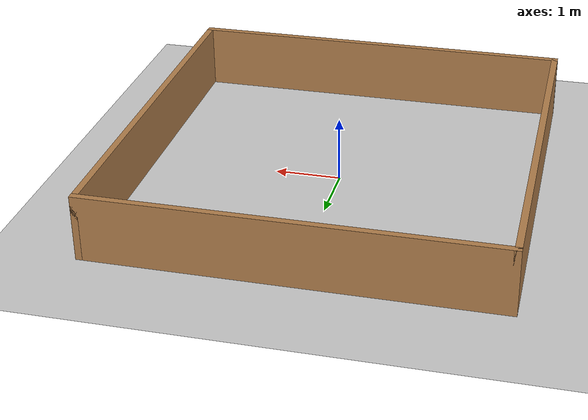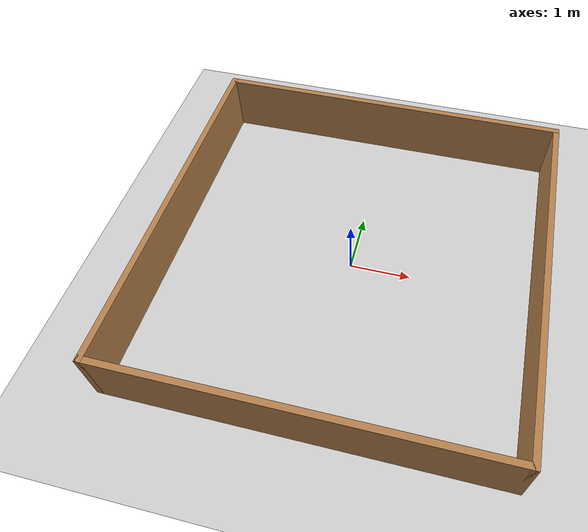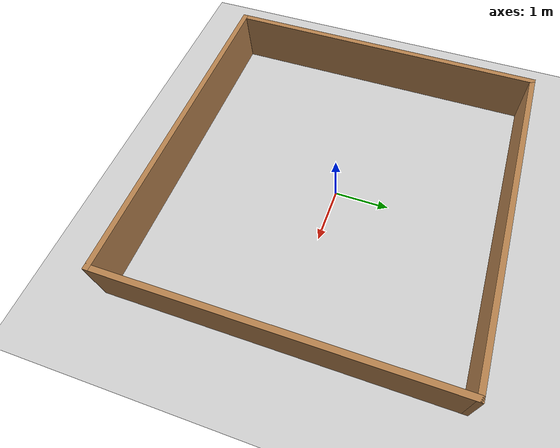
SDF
<?xml version="1.0"?>
<sdf version="1.6">
  <world name="default">

    <include>
      <uri>model://dirt_plane</uri>
    </include>

    <include>
      <uri>model://sun</uri>
    </include>

    <scene>
      <shadows>false</shadows>
    </scene>

    <gui fullscreen='0'>
      <camera name='user_camera'>
        <pose frame=''>0.319654 -0.235002 9.29441 0 1.5138 0.009599</pose>
        <view_controller>orbit</view_controller>
        <projection_type>perspective</projection_type>
      </camera>
    </gui>

    <physics type="ode">
      <real_time_update_rate>1000.0</real_time_update_rate>
      <max_step_size>0.01</max_step_size>
      <real_time_factor>1</real_time_factor> <!-- 실시간 :1 => 최대한 빠른 속도로 0 -->
      <ode>
        <solver>
          <type>quick</type>
          <iters>150</iters>
          <precon_iters>0</precon_iters>
          <sor>1.400000</sor>
          <use_dynamic_moi_rescaling>1</use_dynamic_moi_rescaling>
        </solver>
        <constraints>
          <cfm>0.00001</cfm>
          <erp>0.2</erp>
          <contact_max_correcting_vel>2000.000000</contact_max_correcting_vel>
          <contact_surface_layer>0.01000</contact_surface_layer>
        </constraints>
      </ode>
    </physics>

    <model name="chamoe_field">
      <static>1</static>
      <include>
        <uri>model://chamoe_field</uri>
      </include>
    </model>

  </world>
</sdf>

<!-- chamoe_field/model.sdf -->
<sdf version='1.7'>
  <model name='chamoe_field'>
    <pose>0 0 0 0 -0 0</pose>
    <link name='Wall_14'>
      <collision name='Wall_14_Collision'>
        <geometry>
          <box>
            <size>6.1 0.1 1</size>
          </box>
        </geometry>
        <pose>0 0 0.5 0 -0 0</pose>
      </collision>
      <visual name='Wall_14_Visual'>
        <pose>0 0 0.5 0 -0 0</pose>
        <geometry>
          <box>
            <size>6.1 0.1 1</size>
          </box>
        </geometry>
        <material>
          <script>
            <uri>file://media/materials/scripts/gazebo.material</uri>
            <name>Gazebo/Wood</name>
          </script>
          <ambient>1 1 1 1</ambient>
        </material>
        <meta>
          <layer>0</layer>
        </meta>
      </visual>
      <pose>0 -3 0 0 -0 0</pose>
    </link>
    <link name='Wall_16'>
      <collision name='Wall_16_Collision'>
        <geometry>
          <box>
            <size>6.1 0.1 1</size>
          </box>
        </geometry>
        <pose>0 0 0.5 0 -0 0</pose>
      </collision>
      <visual name='Wall_16_Visual'>
        <pose>0 0 0.5 0 -0 0</pose>
        <geometry>
          <box>
            <size>6.1 0.1 1</size>
          </box>
        </geometry>
        <material>
          <script>
            <uri>file://media/materials/scripts/gazebo.material</uri>
            <name>Gazebo/Wood</name>
          </script>
          <ambient>1 1 1 1</ambient>
        </material>
        <meta>
          <layer>0</layer>
        </meta>
      </visual>
      <pose>-3 0 0 0 -0 1.5708</pose>
    </link>
    <link name='Wall_18'>
      <collision name='Wall_18_Collision'>
        <geometry>
          <box>
            <size>6.1 0.1 1</size>
          </box>
        </geometry>
        <pose>0 0 0.5 0 -0 0</pose>
      </collision>
      <visual name='Wall_18_Visual'>
        <pose>0 0 0.5 0 -0 0</pose>
        <geometry>
          <box>
            <size>6.1 0.1 1</size>
          </box>
        </geometry>
        <material>
          <script>
            <uri>file://media/materials/scripts/gazebo.material</uri>
            <name>Gazebo/Wood</name>
          </script>
          <ambient>1 1 1 1</ambient>
        </material>
        <meta>
          <layer>0</layer>
        </meta>
      </visual>
      <pose>3 0 0 0 -0 1.5708</pose>
    </link>
    <link name='Wall_20'>
      <collision name='Wall_20_Collision'>
        <geometry>
          <box>
            <size>6.1 0.1 1</size>
          </box>
        </geometry>
        <pose>0 0 0.5 0 -0 0</pose>
      </collision>
      <visual name='Wall_20_Visual'>
        <pose>0 0 0.5 0 -0 0</pose>
        <geometry>
          <box>
            <size>6.1 0.1 1</size>
          </box>
        </geometry>
        <material>
          <script>
            <uri>file://media/materials/scripts/gazebo.material</uri>
            <name>Gazebo/Wood</name>
          </script>
          <ambient>1 1 1 1</ambient>
        </material>
        <meta>
          <layer>0</layer>
        </meta>
      </visual>
      <pose>0 3 0 0 -0 0</pose>
    </link>
    <static>1</static>
  </model>
</sdf>

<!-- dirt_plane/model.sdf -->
<sdf version="1.5">
  <model name="dirt_plane">
    <static>true</static>
    <link name="link">
      <collision name="collision">
        <geometry>
          <plane>
            <normal>0 0 1</normal>
            <size>100 100</size>
          </plane>
        </geometry>
        <surface>
          <contact>
             <collide_bitmask>0xffff</collide_bitmask>
          </contact>
          <friction>
            <ode>
              <mu>100</mu>
              <mu2>50</mu2>
            </ode>
          </friction>
        </surface>
      </collision>
      <visual name="visual">
        <cast_shadows>false</cast_shadows>
        <geometry>
          <plane>
            <normal>0 0 1</normal>
            <size>100 100</size>
          </plane>
        </geometry>
        <material>
          <script>
            <uri>model://dirt_plane/materials/scripts/dirt_plane.material</uri>
            <uri>model://dirt_plane/materials/textures/dirt_plane.png</uri>
            <name>dirt_plane/Image</name>
          </script>
        </material>
      </visual>
    </link>
  </model>
</sdf>
